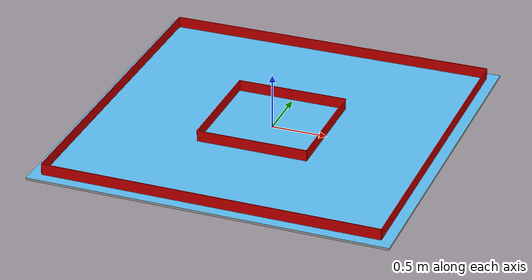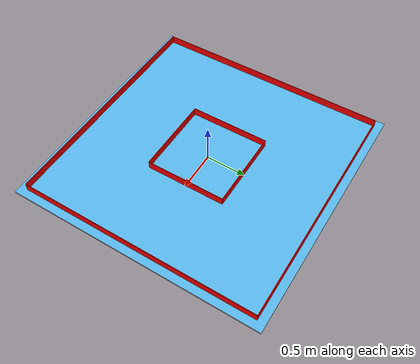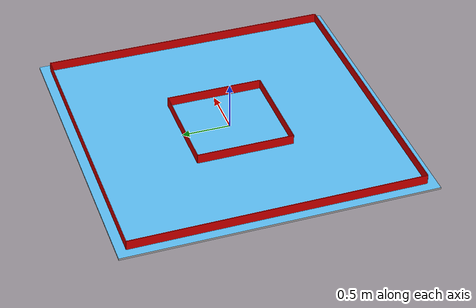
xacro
<?xml version="1.0"?>
<robot xmlns:xacro="http://www.ros.org/wiki/xacro" name="wro_world">
    <link name="world_base_link"/>
    <xacro:arg name="mat_config" default="[0, 0, 0, 0]"/>

    <!-- sides extension status -->
    <xacro:property name="twv" value="${$(arg mat_config)[0]}"/>
    <xacro:property name="bwv" value="${$(arg mat_config)[1]}"/>
    <xacro:property name="rwv" value="${$(arg mat_config)[2]}"/>
    <xacro:property name="lwv" value="${$(arg mat_config)[3]}"/>

    <!-- game mat width -->
    <xacro:property name="mw" value="3.2"/>

    <!-- outer wall width -->
    <xacro:property name="oww" value="3"/>

    <!-- inner wall width -->
    <xacro:property name="iww" value="1"/>

    <!-- game mat height/thickness -->
    <xacro:property name="mh" value="0.02"/>

    <!-- lane adjustment value -->
    <xacro:property name="ladj" value="0.4"/>

    <xacro:include filename="colors.xacro"/>
    <xacro:include filename="inertials.xacro"/>
    <xacro:include filename="wall.xacro"/>

    <!-- mat link loaded from collada meshfile -->
    <link name="mat_link">
        <visual name="">
            <origin xyz="0.0 0.0 0" rpy="0.0 0.0 0.0"/>
            <geometry>
                <mesh filename="file://$(find wro_robosim)/meshes/wro_mat.dae" scale="1 1 1"/>
            </geometry>
        </visual>
        <collision>
            <origin xyz="0.0 0.0 ${mh/2}" rpy="0.0 0.0 0.0"/>
            <geometry>
                <box size="${mw} ${mw} ${mh}"/>
            </geometry>
        </collision>
        <xacro:box_inertia x="${mw}" y="${mw}" z="${mh}">
            <origin xyz="0.0 0.0 ${mh/2}" rpy="0.0 0.0 0.0"/>
        </xacro:box_inertia>
    </link>
    <joint name="world_mat_link" type="fixed">
        <parent link="world_base_link"/>
        <child link="mat_link"/>
    </joint>

    <!-- side shifting values -->
    <xacro:property name="tsv" value="${ladj*twv}"/>
    <xacro:property name="bsv" value="${ladj*bwv}"/>
    <xacro:property name="rsv" value="${ladj*rwv}"/>
    <xacro:property name="lsv" value="${ladj*lwv}"/>

    <!-- inner walls lengths -->
    <xacro:property name="til" value="${iww+rsv+lsv}"/>
    <xacro:property name="bil" value="${iww+rsv+lsv}"/>
    <xacro:property name="ril" value="${iww+tsv+bsv}"/>
    <xacro:property name="lil" value="${iww+tsv+bsv}"/>

    <!-- outer wall objects -->
    <xacro:wall link_name="top_outer_wall" x="${0}" y="${oww/2}" l="${oww}" dir="1"/>
    <xacro:wall link_name="bottom_outer_wall" x="${0}" y="${-oww/2}" l="${oww}" dir="1"/>
    <xacro:wall link_name="right_outer_wall" x="${oww/2}" y="${0}" l="${oww}" dir="0"/>
    <xacro:wall link_name="left_outer_wall" x="${-oww/2}" y="${0}" l="${oww}" dir="0"/>

    <!-- inner wall objects -->
    <xacro:wall link_name="top_inner_wall" x="${rsv/2-lsv/2}" y="${iww/2+tsv}" l="${til}" dir="1"/>
    <xacro:wall link_name="bottom_inner_wall" x="${rsv/2-lsv/2}" y="${-iww/2-bsv}" l="${bil}" dir="1"/>
    <xacro:wall link_name="right_inner_wall" x="${iww/2+rsv}" y="${tsv/2-bsv/2}" l="${ril}" dir="0"/>
    <xacro:wall link_name="left_inner_wall" x="${-iww/2-lsv}" y="${tsv/2-bsv/2}" l="${lil}" dir="0"/>

</robot>

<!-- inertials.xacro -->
<robot xmlns:xacro="http://www.ros.org/wiki/xacro">
    <xacro:property name="density" value = "1000" />

    <xacro:macro name="box_inertia" params="x y z *origin">
        <xacro:property name="mass" value="${density*x*y*z}" />
        <inertial>
            <xacro:insert_block name="origin"/>
            <mass value="${mass}"/>
            <inertia ixx="${(1/12)*mass*(y*y+z*z)}" ixy="0.0" ixz="0.0" iyy="${(1/12)*mass*(x*x+z*z)}" iyz="0.0" izz="${(1/12)*mass*(x*x+y*y)}"/>
        </inertial>
    </xacro:macro>

    <xacro:macro name="cylinder_inertia" params="r h *origin">
        <xacro:property name="mass" value="${density*pi*r*r*h}" />
        <inertial>
            <xacro:insert_block name="origin"/>
            <mass value="${mass}"/>
            <inertia ixx="${(1/12)*mass*(3*r*r + h*h)}" ixy="0.0" ixz="0.0" iyy="${(1/12)*mass*(3*r*r+h*h)}" iyz="0.0" izz="${(1/12)*mass*(r*r)}"/>
        </inertial>
    </xacro:macro>

    <xacro:macro name="sphere_inertia" params="r *origin">
        <xacro:property name="mass" value="${(4/3)*density*pi*r*r*r}" />
        <inertial>
            <xacro:insert_block name="origin"/>
            <mass value="${mass}"/>
            <inertia ixx="${(2/5)*mass*r*r}" ixy="0.0" ixz="0.0" iyy="${(2/5)*mass*r*r}" iyz="0.0" izz="${(2/5)*mass*r*r}"/>
        </inertial>
    </xacro:macro>
</robot>

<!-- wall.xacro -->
<robot xmlns:xacro="http://www.ros.org/wiki/xacro">
    <xacro:property name="wall_h" value="0.1"/>
    <xacro:property name="wall_th" value="0.007"/>

    <xacro:macro name="wall" params="link_name x y l dir">
        <link name="${link_name}">
            <visual name="">
                <origin xyz="0 0 0" rpy="0.0 0.0 0"/>
                <geometry>
                    <box size="${wall_th} ${l} ${wall_h}"/>
                </geometry>
                <material name="">
                    <color rgba="1.0 0.0 0.0 1.0"/>
                    <texture filename=""/>
                </material>
            </visual>
            <collision>
                <origin xyz="0.0 0.0 0.0" rpy="0.0 0.0 0"/>
                <geometry>
                    <box size="${wall_th} ${l} ${wall_h}"/>
                </geometry>
            </collision>
            <xacro:box_inertia x="${wall_th}" y="${l}" z="${wall_h}">
                <origin xyz="0.0 0.0 0.0" rpy="0.0 0.0 0"/>
            </xacro:box_inertia>
        </link>
        <joint name="${link_name}_joint" type="fixed">
            <parent link="world_base_link"/>
            <child link="${link_name}"/>
            <origin xyz="${x} ${y} ${wall_h/2+0.02}" rpy="0.0 0.0  ${dir*pi/2}"/>
        </joint>
        <gazebo reference="${link_name}">
            <material>Gazebo/Black</material>
        </gazebo>

    </xacro:macro>
</robot>
